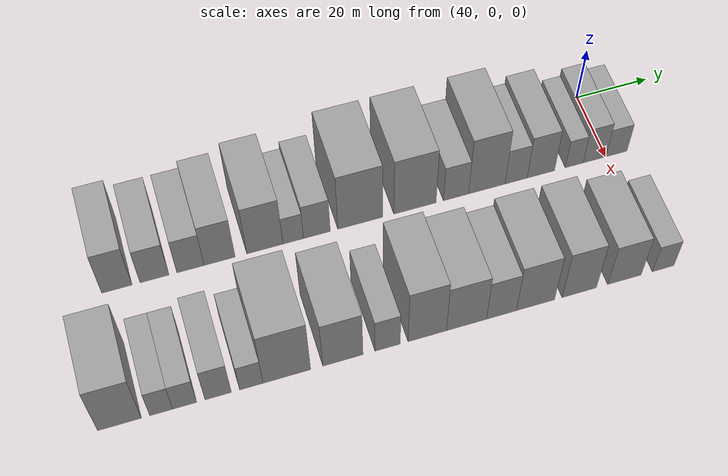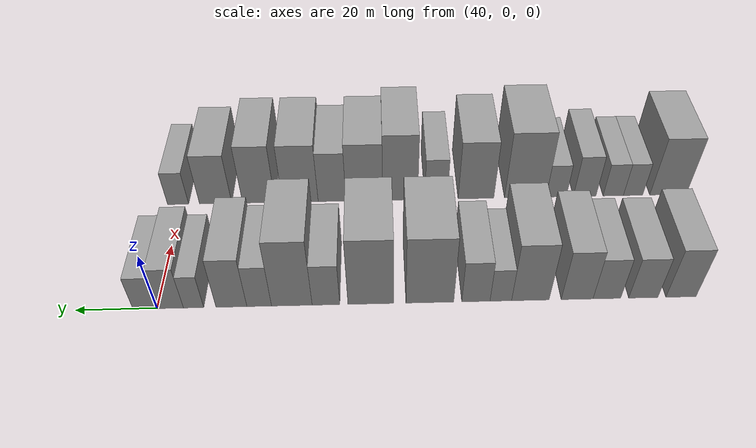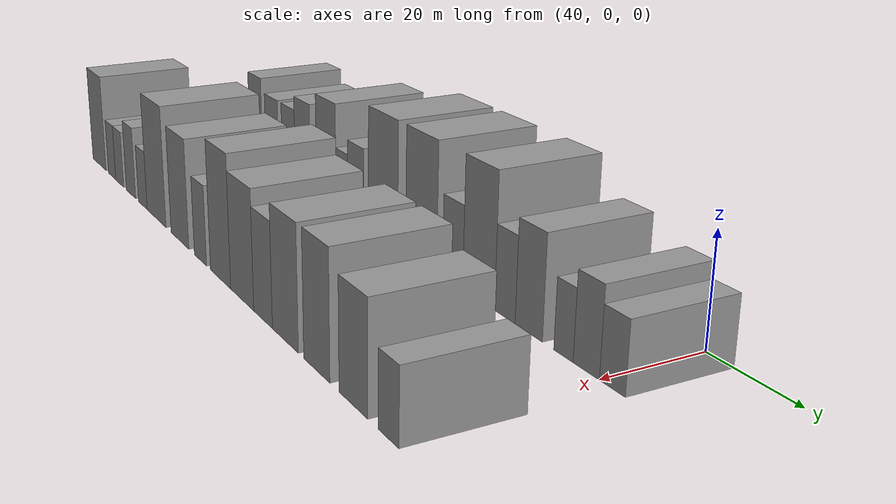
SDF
<sdf version="1.6">
 <world name="default">
  <model name="building_18">
   <static>1</static>
   <pose>50.0000 -129.2719 0 0.000000 0.000000 0.000000</pose>
   <link name="link">
    <pose>0 0 9.00 0 0 0</pose>
    <collision name="collision"><geometry><box><size>20.0000 7.5515 18.0000</size></box></geometry></collision>
    <visual name="visual">
     <cast_shadows>0</cast_shadows>
     <geometry><box><size>20.0000 7.5515 18.0000</size></box></geometry>
     <material>
      <script>
       <uri>model://grey_wall/materials/scripts</uri>
       <uri>model://grey_wall/materials/textures</uri>
       <name>vrc/grey_wall</name>
      </script>
     </material>
    </visual>
   </link>
  </model>
  <model name="building_19">
   <static>1</static>
   <pose>50.0000 -119.8560 0 0.000000 0.000000 0.000000</pose>
   <link name="link">
    <pose>0 0 7.50 0 0 0</pose>
    <collision name="collision"><geometry><box><size>20.0000 7.2804 15.0000</size></box></geometry></collision>
    <visual name="visual">
     <cast_shadows>0</cast_shadows>
     <geometry><box><size>20.0000 7.2804 15.0000</size></box></geometry>
     <material>
      <script>
       <uri>model://grey_wall/materials/scripts</uri>
       <uri>model://grey_wall/materials/textures</uri>
       <name>vrc/grey_wall</name>
      </script>
     </material>
    </visual>
   </link>
  </model>
  <model name="building_20">
   <static>1</static>
   <pose>50.0000 -110.7603 0 0.000000 0.000000 0.000000</pose>
   <link name="link">
    <pose>0 0 7.50 0 0 0</pose>
    <collision name="collision"><geometry><box><size>20.0000 6.9111 15.0000</size></box></geometry></collision>
    <visual name="visual">
     <cast_shadows>0</cast_shadows>
     <geometry><box><size>20.0000 6.9111 15.0000</size></box></geometry>
     <material>
      <script>
       <uri>model://grey_wall/materials/scripts</uri>
       <uri>model://grey_wall/materials/textures</uri>
       <name>vrc/grey_wall</name>
      </script>
     </material>
    </visual>
   </link>
  </model>
  <model name="building_21">
   <static>1</static>
   <pose>50.0000 -103.3472 0 0.000000 0.000000 0.000000</pose>
   <link name="link">
    <pose>0 0 9.00 0 0 0</pose>
    <collision name="collision"><geometry><box><size>20.0000 7.9150 18.0000</size></box></geometry></collision>
    <visual name="visual">
     <cast_shadows>0</cast_shadows>
     <geometry><box><size>20.0000 7.9150 18.0000</size></box></geometry>
     <material>
      <script>
       <uri>model://grey_wall/materials/scripts</uri>
       <uri>model://grey_wall/materials/textures</uri>
       <name>vrc/grey_wall</name>
      </script>
     </material>
    </visual>
   </link>
  </model>
  <model name="building_22">
   <static>1</static>
   <pose>50.0000 -91.7295 0 0.000000 0.000000 0.000000</pose>
   <link name="link">
    <pose>0 0 10.50 0 0 0</pose>
    <collision name="collision"><geometry><box><size>20.0000 9.3206 21.0000</size></box></geometry></collision>
    <visual name="visual">
     <cast_shadows>0</cast_shadows>
     <geometry><box><size>20.0000 9.3206 21.0000</size></box></geometry>
     <material>
      <script>
       <uri>model://grey_wall/materials/scripts</uri>
       <uri>model://grey_wall/materials/textures</uri>
       <name>vrc/grey_wall</name>
      </script>
     </material>
    </visual>
   </link>
  </model>
  <model name="building_23">
   <static>1</static>
   <pose>50.0000 -84.3872 0 0.000000 0.000000 0.000000</pose>
   <link name="link">
    <pose>0 0 6.00 0 0 0</pose>
    <collision name="collision"><geometry><box><size>20.0000 5.3639 12.0000</size></box></geometry></collision>
    <visual name="visual">
     <cast_shadows>0</cast_shadows>
     <geometry><box><size>20.0000 5.3639 12.0000</size></box></geometry>
     <material>
      <script>
       <uri>model://grey_wall/materials/scripts</uri>
       <uri>model://grey_wall/materials/textures</uri>
       <name>vrc/grey_wall</name>
      </script>
     </material>
    </visual>
   </link>
  </model>
  <model name="building_24">
   <static>1</static>
   <pose>50.0000 -78.2163 0 0.000000 0.000000 0.000000</pose>
   <link name="link">
    <pose>0 0 7.50 0 0 0</pose>
    <collision name="collision"><geometry><box><size>20.0000 6.9779 15.0000</size></box></geometry></collision>
    <visual name="visual">
     <cast_shadows>0</cast_shadows>
     <geometry><box><size>20.0000 6.9779 15.0000</size></box></geometry>
     <material>
      <script>
       <uri>model://grey_wall/materials/scripts</uri>
       <uri>model://grey_wall/materials/textures</uri>
       <name>vrc/grey_wall</name>
      </script>
     </material>
    </visual>
   </link>
  </model>
  <model name="building_25">
   <static>1</static>
   <pose>50.0000 -66.8264 0 0.000000 0.000000 0.000000</pose>
   <link name="link">
    <pose>0 0 12.00 0 0 0</pose>
    <collision name="collision"><geometry><box><size>20.0000 11.8019 24.0000</size></box></geometry></collision>
    <visual name="visual">
     <cast_shadows>0</cast_shadows>
     <geometry><box><size>20.0000 11.8019 24.0000</size></box></geometry>
     <material>
      <script>
       <uri>model://grey_wall/materials/scripts</uri>
       <uri>model://grey_wall/materials/textures</uri>
       <name>vrc/grey_wall</name>
      </script>
     </material>
    </visual>
   </link>
  </model>
  <model name="building_26">
   <static>1</static>
   <pose>50.0000 -52.2825 0 0.000000 0.000000 0.000000</pose>
   <link name="link">
    <pose>0 0 12.00 0 0 0</pose>
    <collision name="collision"><geometry><box><size>20.0000 11.2858 24.0000</size></box></geometry></collision>
    <visual name="visual">
     <cast_shadows>0</cast_shadows>
     <geometry><box><size>20.0000 11.2858 24.0000</size></box></geometry>
     <material>
      <script>
       <uri>model://grey_wall/materials/scripts</uri>
       <uri>model://grey_wall/materials/textures</uri>
       <name>vrc/grey_wall</name>
      </script>
     </material>
    </visual>
   </link>
  </model>
  <model name="building_27">
   <static>1</static>
   <pose>50.0000 -41.2421 0 0.000000 0.000000 0.000000</pose>
   <link name="link">
    <pose>0 0 7.50 0 0 0</pose>
    <collision name="collision"><geometry><box><size>20.0000 6.7951 15.0000</size></box></geometry></collision>
    <visual name="visual">
     <cast_shadows>0</cast_shadows>
     <geometry><box><size>20.0000 6.7951 15.0000</size></box></geometry>
     <material>
      <script>
       <uri>model://grey_wall/materials/scripts</uri>
       <uri>model://grey_wall/materials/textures</uri>
       <name>vrc/grey_wall</name>
      </script>
     </material>
    </visual>
   </link>
  </model>
  <model name="building_28">
   <static>1</static>
   <pose>50.0000 -32.8636 0 0.000000 0.000000 0.000000</pose>
   <link name="link">
    <pose>0 0 12.00 0 0 0</pose>
    <collision name="collision"><geometry><box><size>20.0000 9.9619 24.0000</size></box></geometry></collision>
    <visual name="visual">
     <cast_shadows>0</cast_shadows>
     <geometry><box><size>20.0000 9.9619 24.0000</size></box></geometry>
     <material>
      <script>
       <uri>model://grey_wall/materials/scripts</uri>
       <uri>model://grey_wall/materials/textures</uri>
       <name>vrc/grey_wall</name>
      </script>
     </material>
    </visual>
   </link>
  </model>
  <model name="building_29">
   <static>1</static>
   <pose>50.0000 -24.8612 0 0.000000 0.000000 0.000000</pose>
   <link name="link">
    <pose>0 0 7.50 0 0 0</pose>
    <collision name="collision"><geometry><box><size>20.0000 6.0428 15.0000</size></box></geometry></collision>
    <visual name="visual">
     <cast_shadows>0</cast_shadows>
     <geometry><box><size>20.0000 6.0428 15.0000</size></box></geometry>
     <material>
      <script>
       <uri>model://grey_wall/materials/scripts</uri>
       <uri>model://grey_wall/materials/textures</uri>
       <name>vrc/grey_wall</name>
      </script>
     </material>
    </visual>
   </link>
  </model>
  <model name="building_30">
   <static>1</static>
   <pose>50.0000 -18.0613 0 0.000000 0.000000 0.000000</pose>
   <link name="link">
    <pose>0 0 9.00 0 0 0</pose>
    <collision name="collision"><geometry><box><size>20.0000 7.5571 18.0000</size></box></geometry></collision>
    <visual name="visual">
     <cast_shadows>0</cast_shadows>
     <geometry><box><size>20.0000 7.5571 18.0000</size></box></geometry>
     <material>
      <script>
       <uri>model://grey_wall/materials/scripts</uri>
       <uri>model://grey_wall/materials/textures</uri>
       <name>vrc/grey_wall</name>
      </script>
     </material>
    </visual>
   </link>
  </model>
  <model name="building_31">
   <static>1</static>
   <pose>50.0000 -8.8151 0 0.000000 0.000000 0.000000</pose>
   <link name="link">
    <pose>0 0 6.00 0 0 0</pose>
    <collision name="collision"><geometry><box><size>20.0000 4.9353 12.0000</size></box></geometry></collision>
    <visual name="visual">
     <cast_shadows>0</cast_shadows>
     <geometry><box><size>20.0000 4.9353 12.0000</size></box></geometry>
     <material>
      <script>
       <uri>model://grey_wall/materials/scripts</uri>
       <uri>model://grey_wall/materials/textures</uri>
       <name>vrc/grey_wall</name>
      </script>
     </material>
    </visual>
   </link>
  </model>
  <model name="building_32">
   <static>1</static>
   <pose>50.0000 -3.1559 0 0.000000 0.000000 0.000000</pose>
   <link name="link">
    <pose>0 0 7.50 0 0 0</pose>
    <collision name="collision"><geometry><box><size>20.0000 6.3832 15.0000</size></box></geometry></collision>
    <visual name="visual">
     <cast_shadows>0</cast_shadows>
     <geometry><box><size>20.0000 6.3832 15.0000</size></box></geometry>
     <material>
      <script>
       <uri>model://grey_wall/materials/scripts</uri>
       <uri>model://grey_wall/materials/textures</uri>
       <name>vrc/grey_wall</name>
      </script>
     </material>
    </visual>
   </link>
  </model>
  <model name="building_33">
   <static>1</static>
   <pose>50.0000 3.0091 0 0.000000 0.000000 0.000000</pose>
   <link name="link">
    <pose>0 0 6.00 0 0 0</pose>
    <collision name="collision"><geometry><box><size>20.0000 5.9468 12.0000</size></box></geometry></collision>
    <visual name="visual">
     <cast_shadows>0</cast_shadows>
     <geometry><box><size>20.0000 5.9468 12.0000</size></box></geometry>
     <material>
      <script>
       <uri>model://grey_wall/materials/scripts</uri>
       <uri>model://grey_wall/materials/textures</uri>
       <name>vrc/grey_wall</name>
      </script>
     </material>
    </visual>
   </link>
  </model>
  <model name="building_78">
   <static>1</static>
   <pose>85.0000 -135.8305 0 0.000000 0.000000 0.000000</pose>
   <link name="link">
    <pose>0 0 10.50 0 0 0</pose>
    <collision name="collision"><geometry><box><size>20.0000 10.3033 21.0000</size></box></geometry></collision>
    <visual name="visual">
     <cast_shadows>0</cast_shadows>
     <geometry><box><size>20.0000 10.3033 21.0000</size></box></geometry>
     <material>
      <script>
       <uri>model://grey_wall/materials/scripts</uri>
       <uri>model://grey_wall/materials/textures</uri>
       <name>vrc/grey_wall</name>
      </script>
     </material>
    </visual>
   </link>
  </model>
  <model name="building_79">
   <static>1</static>
   <pose>85.0000 -125.9558 0 0.000000 0.000000 0.000000</pose>
   <link name="link">
    <pose>0 0 6.00 0 0 0</pose>
    <collision name="collision"><geometry><box><size>20.0000 5.4460 12.0000</size></box></geometry></collision>
    <visual name="visual">
     <cast_shadows>0</cast_shadows>
     <geometry><box><size>20.0000 5.4460 12.0000</size></box></geometry>
     <material>
      <script>
       <uri>model://grey_wall/materials/scripts</uri>
       <uri>model://grey_wall/materials/textures</uri>
       <name>vrc/grey_wall</name>
      </script>
     </material>
    </visual>
   </link>
  </model>
  <model name="building_80">
   <static>1</static>
   <pose>85.0000 -120.3680 0 0.000000 0.000000 0.000000</pose>
   <link name="link">
    <pose>0 0 6.00 0 0 0</pose>
    <collision name="collision"><geometry><box><size>20.0000 5.7296 12.0000</size></box></geometry></collision>
    <visual name="visual">
     <cast_shadows>0</cast_shadows>
     <geometry><box><size>20.0000 5.7296 12.0000</size></box></geometry>
     <material>
      <script>
       <uri>model://grey_wall/materials/scripts</uri>
       <uri>model://grey_wall/materials/textures</uri>
       <name>vrc/grey_wall</name>
      </script>
     </material>
    </visual>
   </link>
  </model>
  <model name="building_81">
   <static>1</static>
   <pose>85.0000 -112.3263 0 0.000000 0.000000 0.000000</pose>
   <link name="link">
    <pose>0 0 7.50 0 0 0</pose>
    <collision name="collision"><geometry><box><size>20.0000 6.3538 15.0000</size></box></geometry></collision>
    <visual name="visual">
     <cast_shadows>0</cast_shadows>
     <geometry><box><size>20.0000 6.3538 15.0000</size></box></geometry>
     <material>
      <script>
       <uri>model://grey_wall/materials/scripts</uri>
       <uri>model://grey_wall/materials/textures</uri>
       <name>vrc/grey_wall</name>
      </script>
     </material>
    </visual>
   </link>
  </model>
  <model name="building_82">
   <static>1</static>
   <pose>85.0000 -104.3263 0 0.000000 0.000000 0.000000</pose>
   <link name="link">
    <pose>0 0 6.00 0 0 0</pose>
    <collision name="collision"><geometry><box><size>20.0000 5.6463 12.0000</size></box></geometry></collision>
    <visual name="visual">
     <cast_shadows>0</cast_shadows>
     <geometry><box><size>20.0000 5.6463 12.0000</size></box></geometry>
     <material>
      <script>
       <uri>model://grey_wall/materials/scripts</uri>
       <uri>model://grey_wall/materials/textures</uri>
       <name>vrc/grey_wall</name>
      </script>
     </material>
    </visual>
   </link>
  </model>
  <model name="building_83">
   <static>1</static>
   <pose>85.0000 -95.6543 0 0.000000 0.000000 0.000000</pose>
   <link name="link">
    <pose>0 0 12.00 0 0 0</pose>
    <collision name="collision"><geometry><box><size>20.0000 11.6976 24.0000</size></box></geometry></collision>
    <visual name="visual">
     <cast_shadows>0</cast_shadows>
     <geometry><box><size>20.0000 11.6976 24.0000</size></box></geometry>
     <material>
      <script>
       <uri>model://grey_wall/materials/scripts</uri>
       <uri>model://grey_wall/materials/textures</uri>
       <name>vrc/grey_wall</name>
      </script>
     </material>
    </visual>
   </link>
  </model>
  <model name="building_84">
   <static>1</static>
   <pose>85.0000 -81.8157 0 0.000000 0.000000 0.000000</pose>
   <link name="link">
    <pose>0 0 10.50 0 0 0</pose>
    <collision name="collision"><geometry><box><size>20.0000 9.9796 21.0000</size></box></geometry></collision>
    <visual name="visual">
     <cast_shadows>0</cast_shadows>
     <geometry><box><size>20.0000 9.9796 21.0000</size></box></geometry>
     <material>
      <script>
       <uri>model://grey_wall/materials/scripts</uri>
       <uri>model://grey_wall/materials/textures</uri>
       <name>vrc/grey_wall</name>
      </script>
     </material>
    </visual>
   </link>
  </model>
  <model name="building_85">
   <static>1</static>
   <pose>85.0000 -70.6720 0 0.000000 0.000000 0.000000</pose>
   <link name="link">
    <pose>0 0 7.50 0 0 0</pose>
    <collision name="collision"><geometry><box><size>20.0000 6.3076 15.0000</size></box></geometry></collision>
    <visual name="visual">
     <cast_shadows>0</cast_shadows>
     <geometry><box><size>20.0000 6.3076 15.0000</size></box></geometry>
     <material>
      <script>
       <uri>model://grey_wall/materials/scripts</uri>
       <uri>model://grey_wall/materials/textures</uri>
       <name>vrc/grey_wall</name>
      </script>
     </material>
    </visual>
   </link>
  </model>
  <model name="building_86">
   <static>1</static>
   <pose>85.0000 -60.6633 0 0.000000 0.000000 0.000000</pose>
   <link name="link">
    <pose>0 0 12.00 0 0 0</pose>
    <collision name="collision"><geometry><box><size>20.0000 9.7099 24.0000</size></box></geometry></collision>
    <visual name="visual">
     <cast_shadows>0</cast_shadows>
     <geometry><box><size>20.0000 9.7099 24.0000</size></box></geometry>
     <material>
      <script>
       <uri>model://grey_wall/materials/scripts</uri>
       <uri>model://grey_wall/materials/textures</uri>
       <name>vrc/grey_wall</name>
      </script>
     </material>
    </visual>
   </link>
  </model>
  <model name="building_87">
   <static>1</static>
   <pose>85.0000 -50.6779 0 0.000000 0.000000 0.000000</pose>
   <link name="link">
    <pose>0 0 10.50 0 0 0</pose>
    <collision name="collision"><geometry><box><size>20.0000 10.2608 21.0000</size></box></geometry></collision>
    <visual name="visual">
     <cast_shadows>0</cast_shadows>
     <geometry><box><size>20.0000 10.2608 21.0000</size></box></geometry>
     <material>
      <script>
       <uri>model://grey_wall/materials/scripts</uri>
       <uri>model://grey_wall/materials/textures</uri>
       <name>vrc/grey_wall</name>
      </script>
     </material>
    </visual>
   </link>
  </model>
  <model name="building_88">
   <static>1</static>
   <pose>85.0000 -41.6947 0 0.000000 0.000000 0.000000</pose>
   <link name="link">
    <pose>0 0 9.00 0 0 0</pose>
    <collision name="collision"><geometry><box><size>20.0000 7.7056 18.0000</size></box></geometry></collision>
    <visual name="visual">
     <cast_shadows>0</cast_shadows>
     <geometry><box><size>20.0000 7.7056 18.0000</size></box></geometry>
     <material>
      <script>
       <uri>model://grey_wall/materials/scripts</uri>
       <uri>model://grey_wall/materials/textures</uri>
       <name>vrc/grey_wall</name>
      </script>
     </material>
    </visual>
   </link>
  </model>
  <model name="building_89">
   <static>1</static>
   <pose>85.0000 -32.8845 0 0.000000 0.000000 0.000000</pose>
   <link name="link">
    <pose>0 0 10.50 0 0 0</pose>
    <collision name="collision"><geometry><box><size>20.0000 9.9148 21.0000</size></box></geometry></collision>
    <visual name="visual">
     <cast_shadows>0</cast_shadows>
     <geometry><box><size>20.0000 9.9148 21.0000</size></box></geometry>
     <material>
      <script>
       <uri>model://grey_wall/materials/scripts</uri>
       <uri>model://grey_wall/materials/textures</uri>
       <name>vrc/grey_wall</name>
      </script>
     </material>
    </visual>
   </link>
  </model>
  <model name="building_90">
   <static>1</static>
   <pose>85.0000 -21.4152 0 0.000000 0.000000 0.000000</pose>
   <link name="link">
    <pose>0 0 10.50 0 0 0</pose>
    <collision name="collision"><geometry><box><size>20.0000 9.0239 21.0000</size></box></geometry></collision>
    <visual name="visual">
     <cast_shadows>0</cast_shadows>
     <geometry><box><size>20.0000 9.0239 21.0000</size></box></geometry>
     <material>
      <script>
       <uri>model://grey_wall/materials/scripts</uri>
       <uri>model://grey_wall/materials/textures</uri>
       <name>vrc/grey_wall</name>
      </script>
     </material>
    </visual>
   </link>
  </model>
  <model name="building_91">
   <static>1</static>
   <pose>85.0000 -9.4465 0 0.000000 0.000000 0.000000</pose>
   <link name="link">
    <pose>0 0 9.00 0 0 0</pose>
    <collision name="collision"><geometry><box><size>20.0000 8.9135 18.0000</size></box></geometry></collision>
    <visual name="visual">
     <cast_shadows>0</cast_shadows>
     <geometry><box><size>20.0000 8.9135 18.0000</size></box></geometry>
     <material>
      <script>
       <uri>model://grey_wall/materials/scripts</uri>
       <uri>model://grey_wall/materials/textures</uri>
       <name>vrc/grey_wall</name>
      </script>
     </material>
    </visual>
   </link>
  </model>
  <model name="building_92">
   <static>1</static>
   <pose>85.0000 0.9085 0 0.000000 0.000000 0.000000</pose>
   <link name="link">
    <pose>0 0 6.00 0 0 0</pose>
    <collision name="collision"><geometry><box><size>20.0000 5.7964 12.0000</size></box></geometry></collision>
    <visual name="visual">
     <cast_shadows>0</cast_shadows>
     <geometry><box><size>20.0000 5.7964 12.0000</size></box></geometry>
     <material>
      <script>
       <uri>model://grey_wall/materials/scripts</uri>
       <uri>model://grey_wall/materials/textures</uri>
       <name>vrc/grey_wall</name>
      </script>
     </material>
    </visual>
   </link>
  </model>
 </world>
</sdf>
